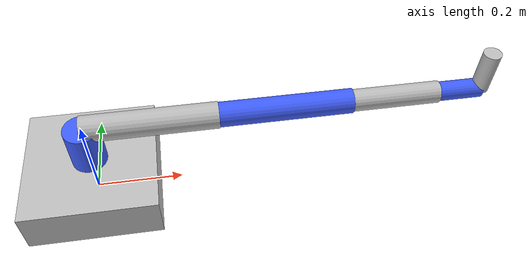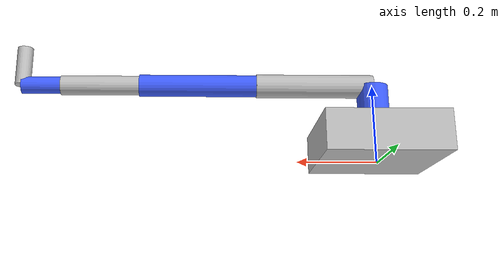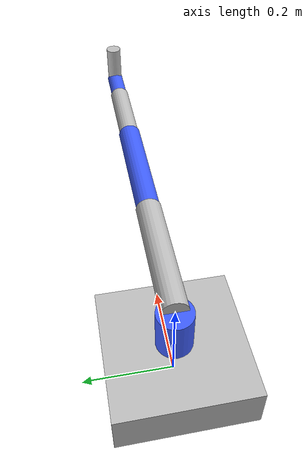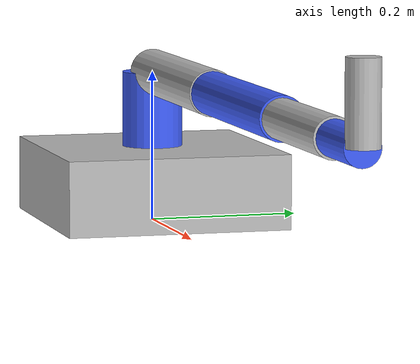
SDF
<sdf version='1.11'>
  <model name='six_dof_arm'>
    <link name='base_link'>
      <inertial>
        <pose>0 0 0 0 0 0</pose>
        <mass>1</mass>
        <inertia>
          <ixx>0.01</ixx>
          <ixy>0</ixy>
          <ixz>0</ixz>
          <iyy>0.01</iyy>
          <iyz>0</iyz>
          <izz>0.01</izz>
        </inertia>
      </inertial>
      <collision name='base_link_collision'>
        <pose>0 0 0.050000000000000003 0 0 0</pose>
        <geometry>
          <box>
            <size>0.29999999999999999 0.29999999999999999 0.10000000000000001</size>
          </box>
        </geometry>
      </collision>
      <visual name='base_link_visual'>
        <pose>0 0 0.050000000000000003 0 0 0</pose>
        <geometry>
          <box>
            <size>0.29999999999999999 0.29999999999999999 0.10000000000000001</size>
          </box>
        </geometry>
        <material>
          <diffuse>0.75000006 0.75000006 0.75000006 1</diffuse>
          <ambient>0.75000006 0.75000006 0.75000006 1</ambient>
        </material>
      </visual>
    </link>

    <joint name='joint1' type='revolute'>
      <pose relative_to='base_link'>0 0 0.10000000000000001 0 0 0</pose>
      <parent>base_link</parent>
      <child>link1</child>
      <axis>
        <xyz>0 0 1</xyz>
        <limit>
          <lower>-3.1415999999999999</lower>
          <upper>3.1415999999999999</upper>
          <effort>100</effort>
          <velocity>2</velocity>
        </limit>
        <dynamics>
          <spring_reference>0</spring_reference>
          <spring_stiffness>0</spring_stiffness>
        </dynamics>
      </axis>
    </joint>

    <link name='link1'>
      <pose relative_to='joint1'>0 0 0 0 0 0</pose>
      <inertial>
        <pose>0 0 0 0 0 0</pose>
        <mass>1</mass>
        <inertia>
          <ixx>0.01</ixx>
          <ixy>0</ixy>
          <ixz>0</ixz>
          <iyy>0.01</iyy>
          <iyz>0</iyz>
          <izz>0.01</izz>
        </inertia>
      </inertial>
      <collision name='link1_collision'>
        <pose>0 0 0.050000000000000003 0 0 0</pose>
        <geometry>
          <cylinder>
            <length>0.10000000000000001</length>
            <radius>0.040000000000000001</radius>
          </cylinder>
        </geometry>
      </collision>
      <visual name='link1_visual'>
        <pose>0 0 0.050000000000000003 0 0 0</pose>
        <geometry>
          <cylinder>
            <length>0.10000000000000001</length>
            <radius>0.040000000000000001</radius>
          </cylinder>
        </geometry>
        <material>
          <diffuse>0.25 0.37500003 1 1</diffuse>
          <ambient>0.25 0.37500003 1 1</ambient>
        </material>
      </visual>
    </link>

    <joint name='joint2' type='revolute'>
      <pose relative_to='link1'>0 0 0.10000000000000001 0 0 0</pose>
      <parent>link1</parent>
      <child>link2</child>
      <axis>
        <xyz>0 1 0</xyz>
        <limit>
          <lower>-2.3561999999999999</lower>
          <upper>2.3561999999999999</upper>
          <effort>80</effort>
          <velocity>2</velocity>
        </limit>
        <dynamics>
          <spring_reference>0</spring_reference>
          <spring_stiffness>0</spring_stiffness>
        </dynamics>
      </axis>
    </joint>

    <link name='link2'>
      <pose relative_to='joint2'>0 0 0 0 0 0</pose>
      <inertial>
        <pose>0 0 0 0 0 0</pose>
        <mass>1</mass>
        <inertia>
          <ixx>0.01</ixx>
          <ixy>0</ixy>
          <ixz>0</ixz>
          <iyy>0.01</iyy>
          <iyz>0</iyz>
          <izz>0.01</izz>
        </inertia>
      </inertial>
      <collision name='link2_collision'>
        <pose>0.14999999999999999 0 0 0 1.5707963267948966 0</pose>
        <geometry>
          <cylinder>
            <length>0.29999999999999999</length>
            <radius>0.029999999999999999</radius>
          </cylinder>
        </geometry>
      </collision>
      <visual name='link2_visual'>
        <pose>0.14999999999999999 0 0 0 1.5707963267948966 0</pose>
        <geometry>
          <cylinder>
            <length>0.29999999999999999</length>
            <radius>0.029999999999999999</radius>
          </cylinder>
        </geometry>
        <material>
          <diffuse>0.75000006 0.75000006 0.75000006 1</diffuse>
          <ambient>0.75000006 0.75000006 0.75000006 1</ambient>
        </material>
      </visual>
    </link>
    <joint name='joint3' type='revolute'>
      <pose relative_to='link2'>0.29999999999999999 0 0 0 0 0</pose>
      <parent>link2</parent>
      <child>link3</child>
      <axis>
        <xyz>0 1 0</xyz>
        <limit>
          <lower>-2.3561999999999999</lower>
          <upper>2.3561999999999999</upper>
          <effort>80</effort>
          <velocity>2</velocity>
        </limit>
        <dynamics>
          <spring_reference>0</spring_reference>
          <spring_stiffness>0</spring_stiffness>
        </dynamics>
      </axis>
    </joint>
    <link name='link3'>
      <pose relative_to='joint3'>0 0 0 0 0 0</pose>
      <inertial>
        <pose>0 0 0 0 0 0</pose>
        <mass>1</mass>
        <inertia>
          <ixx>0.01</ixx>
          <ixy>0</ixy>
          <ixz>0</ixz>
          <iyy>0.01</iyy>
          <iyz>0</iyz>
          <izz>0.01</izz>
        </inertia>
      </inertial>
      <collision name='link3_collision'>
        <pose>0.14999999999999999 0 0 0 1.5707963267948966 0</pose>
        <geometry>
          <cylinder>
            <length>0.29999999999999999</length>
            <radius>0.028000000000000001</radius>
          </cylinder>
        </geometry>
      </collision>
      <visual name='link3_visual'>
        <pose>0.14999999999999999 0 0 0 1.5707963267948966 0</pose>
        <geometry>
          <cylinder>
            <length>0.29999999999999999</length>
            <radius>0.028000000000000001</radius>
          </cylinder>
        </geometry>
        <material>
          <diffuse>0.25 0.37500003 1 1</diffuse>
          <ambient>0.25 0.37500003 1 1</ambient>
        </material>
      </visual>
    </link>
    <joint name='joint4' type='revolute'>
      <pose relative_to='link3'>0.29999999999999999 0 0 0 0 0</pose>
      <parent>link3</parent>
      <child>link4</child>
      <axis>
        <xyz>0 1 0</xyz>
        <limit>
          <lower>-3.1415999999999999</lower>
          <upper>3.1415999999999999</upper>
          <effort>50</effort>
          <velocity>3</velocity>
        </limit>
        <dynamics>
          <spring_reference>0</spring_reference>
          <spring_stiffness>0</spring_stiffness>
        </dynamics>
      </axis>
    </joint>
    <link name='link4'>
      <pose relative_to='joint4'>0 0 0 0 0 0</pose>
      <inertial>
        <pose>0 0 0 0 0 0</pose>
        <mass>1</mass>
        <inertia>
          <ixx>0.01</ixx>
          <ixy>0</ixy>
          <ixz>0</ixz>
          <iyy>0.01</iyy>
          <iyz>0</iyz>
          <izz>0.01</izz>
        </inertia>
      </inertial>
      <collision name='link4_collision'>
        <pose>0.10000000000000001 0 0 0 1.5707963267948966 0</pose>
        <geometry>
          <cylinder>
            <length>0.20000000000000001</length>
            <radius>0.025000000000000001</radius>
          </cylinder>
        </geometry>
      </collision>
      <visual name='link4_visual'>
        <pose>0.10000000000000001 0 0 0 1.5707963267948966 0</pose>
        <geometry>
          <cylinder>
            <length>0.20000000000000001</length>
            <radius>0.025000000000000001</radius>
          </cylinder>
        </geometry>
        <material>
          <diffuse>0.75000006 0.75000006 0.75000006 1</diffuse>
          <ambient>0.75000006 0.75000006 0.75000006 1</ambient>
        </material>
      </visual>
    </link>
    <joint name='joint5' type='revolute'>
      <pose relative_to='link4'>0.20000000000000001 0 0 0 0 0</pose>
      <parent>link4</parent>
      <child>link5</child>
      <axis>
        <xyz>1 0 0</xyz>
        <limit>
          <lower>-3.1415999999999999</lower>
          <upper>3.1415999999999999</upper>
          <effort>40</effort>
          <velocity>3</velocity>
        </limit>
        <dynamics>
          <spring_reference>0</spring_reference>
          <spring_stiffness>0</spring_stiffness>
        </dynamics>
      </axis>
    </joint>
    <link name='link5'>
      <pose relative_to='joint5'>0 0 0 0 0 0</pose>
      <inertial>
        <pose>0 0 0 0 0 0</pose>
        <mass>1</mass>
        <inertia>
          <ixx>0.01</ixx>
          <ixy>0</ixy>
          <ixz>0</ixz>
          <iyy>0.01</iyy>
          <iyz>0</iyz>
          <izz>0.01</izz>
        </inertia>
      </inertial>
      <collision name='link5_collision'>
        <pose>0.050000000000000003 0 0 0 1.5707963267948966 0</pose>
        <geometry>
          <cylinder>
            <length>0.10000000000000001</length>
            <radius>0.021999999999999999</radius>
          </cylinder>
        </geometry>
      </collision>
      <visual name='link5_visual'>
        <pose>0.050000000000000003 0 0 0 1.5707963267948966 0</pose>
        <geometry>
          <cylinder>
            <length>0.10000000000000001</length>
            <radius>0.021999999999999999</radius>
          </cylinder>
        </geometry>
        <material>
          <diffuse>0.25 0.37500003 1 1</diffuse>
          <ambient>0.25 0.37500003 1 1</ambient>
        </material>
      </visual>
    </link>
    <joint name='joint6' type='revolute'>
      <pose relative_to='link5'>0.10000000000000001 0 0 0 0 0</pose>
      <parent>link5</parent>
      <child>tool0</child>
      <axis>
        <xyz>0 0 1</xyz>
        <limit>
          <lower>-3.1415999999999999</lower>
          <upper>3.1415999999999999</upper>
          <effort>30</effort>
          <velocity>4</velocity>
        </limit>
        <dynamics>
          <spring_reference>0</spring_reference>
          <spring_stiffness>0</spring_stiffness>
        </dynamics>
      </axis>
    </joint>
    <link name='tool0'>
      <pose relative_to='joint6'>0 0 0 0 0 0</pose>
      <inertial>
        <pose>0 0 0 0 0 0</pose>
        <mass>1</mass>
        <inertia>
          <ixx>0.01</ixx>
          <ixy>0</ixy>
          <ixz>0</ixz>
          <iyy>0.01</iyy>
          <iyz>0</iyz>
          <izz>0.01</izz>
        </inertia>
      </inertial>
      <collision name='tool0_collision'>
        <pose>0 0 0.050000000000000003 0 0 0</pose>
        <geometry>
          <cylinder>
            <length>0.10000000000000001</length>
            <radius>0.02</radius>
          </cylinder>
        </geometry>
      </collision>
      <visual name='tool0_visual'>
        <pose>0 0 0.050000000000000003 0 0 0</pose>
        <geometry>
          <cylinder>
            <length>0.10000000000000001</length>
            <radius>0.02</radius>
          </cylinder>
        </geometry>
        <material>
          <diffuse>0.75000006 0.75000006 0.75000006 1</diffuse>
          <ambient>0.75000006 0.75000006 0.75000006 1</ambient>
        </material>
      </visual>
    </link>

    <!-- Controller plugin -->
    <plugin filename="libgz-sim-joint-position-controller-system.so"
            name="gz::sim::systems::JointPositionController">
      <joint_name>joint1</joint_name>
      <topic>/joint1_pos_cmd</topic>
    </plugin>

    <plugin filename="libgz-sim-joint-position-controller-system.so"
            name="gz::sim::systems::JointPositionController">
      <joint_name>joint2</joint_name>
      <topic>/joint2_pos_cmd</topic>
    </plugin>

    <plugin filename="libgz-sim-joint-position-controller-system.so"
            name="gz::sim::systems::JointPositionController">
      <joint_name>joint3</joint_name>
      <topic>/joint3_pos_cmd</topic>
    </plugin>

    <plugin filename="libgz-sim-joint-position-controller-system.so"
            name="gz::sim::systems::JointPositionController">
      <joint_name>joint4</joint_name>
      <topic>/joint4_pos_cmd</topic>
    </plugin>

    <plugin filename="libgz-sim-joint-position-controller-system.so"
            name="gz::sim::systems::JointPositionController">
      <joint_name>joint5</joint_name>
      <topic>/joint5_pos_cmd</topic>
    </plugin>

    <plugin filename="libgz-sim-joint-position-controller-system.so"
            name="gz::sim::systems::JointPositionController">
      <joint_name>joint6</joint_name>
      <topic>/joint6_pos_cmd</topic>
    </plugin>

    <plugin filename="libgz-sim-joint-state-publisher-system.so"
            name="gz::sim::systems::JointStatePublisher">
        <joint_name>joint1</joint_name>
        <joint_name>joint2</joint_name>
        <joint_name>joint3</joint_name>
        <joint_name>joint4</joint_name>
        <joint_name>joint5</joint_name>
        <joint_name>joint6</joint_name>
        <topic>joint_states</topic>
    </plugin>

    <plugin filename="libgz-sim-pose-publisher-system.so"
            name="gz::sim::systems::PosePublisher">
        <link_name>base_link</link_name>
        <link_name>link1</link_name>
        <link_name>link2</link_name>
        <link_name>link3</link_name>
        <link_name>link4</link_name>
        <link_name>link5</link_name>
        <link_name>tool0</link_name>
        <topic>model/six_dof_arm/tf</topic>
        <publish_nested_model_pose>true</publish_nested_model_pose>
        <publish_model_frame>true</publish_model_frame>
    </plugin>

  </model>
</sdf>
